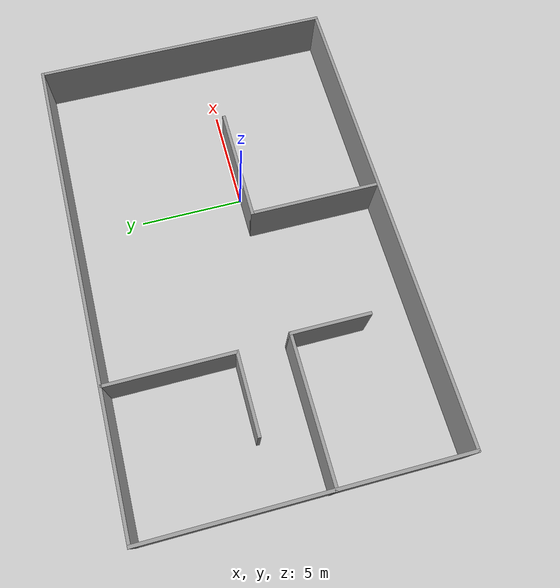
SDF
<?xml version='1.0'?>
<sdf version='1.7'>
  <model name='home'>
    <pose>-3.10908 0.996906 0 0 -0 0</pose>
    <link name='Wall_15'>
      <collision name='Wall_15_Collision'>
        <geometry>
          <box>
            <size>14.5 0.15 2.5</size>
          </box>
        </geometry>
        <pose>0 0 1.25 0 -0 0</pose>
      </collision>
      <visual name='Wall_15_Visual'>
        <pose>0 0 1.25 0 -0 0</pose>
        <geometry>
          <box>
            <size>14.5 0.15 2.5</size>
          </box>
        </geometry>
        <material>
          <script>
            <uri>file://media/materials/scripts/gazebo.material</uri>
            <name>Gazebo/Grey</name>
          </script>
          <ambient>1 1 1 1</ambient>
        </material>
        <meta>
          <layer>0</layer>
        </meta>
      </visual>
      <pose>-11.2924 -9.4e-05 0 0 -0 -1.5708</pose>
    </link>
    <link name='Wall_16'>
      <collision name='Wall_16_Collision'>
        <geometry>
          <box>
            <size>22.75 0.15 2.5</size>
          </box>
        </geometry>
        <pose>0 0 1.25 0 -0 0</pose>
      </collision>
      <visual name='Wall_16_Visual'>
        <pose>0 0 1.25 0 -0 0</pose>
        <geometry>
          <box>
            <size>22.75 0.15 2.5</size>
          </box>
        </geometry>
        <material>
          <script>
            <uri>file://media/materials/scripts/gazebo.material</uri>
            <name>Gazebo/Grey</name>
          </script>
          <ambient>1 1 1 1</ambient>
        </material>
        <meta>
          <layer>0</layer>
        </meta>
      </visual>
      <pose>0.007836 -7.175 0 0 -0 8e-06</pose>
    </link>
    <link name='Wall_17'>
      <collision name='Wall_17_Collision'>
        <geometry>
          <box>
            <size>14.5 0.15 2.5</size>
          </box>
        </geometry>
        <pose>0 0 1.25 0 -0 0</pose>
      </collision>
      <visual name='Wall_17_Visual'>
        <pose>0 0 1.25 0 -0 0</pose>
        <geometry>
          <box>
            <size>14.5 0.15 2.5</size>
          </box>
        </geometry>
        <material>
          <script>
            <uri>file://media/materials/scripts/gazebo.material</uri>
            <name>Gazebo/Grey</name>
          </script>
          <ambient>1 1 1 1</ambient>
        </material>
        <meta>
          <layer>0</layer>
        </meta>
      </visual>
      <pose>11.3081 9.4e-05 0 0 -0 1.5708</pose>
    </link>
    <link name='Wall_19'>
      <collision name='Wall_19_Collision'>
        <geometry>
          <box>
            <size>22.7505 0.15 2.5</size>
          </box>
        </geometry>
        <pose>0 0 1.25 0 -0 0</pose>
      </collision>
      <visual name='Wall_19_Visual'>
        <pose>0 0 1.25 0 -0 0</pose>
        <geometry>
          <box>
            <size>22.7505 0.15 2.5</size>
          </box>
        </geometry>
        <material>
          <script>
            <uri>file://media/materials/scripts/gazebo.material</uri>
            <name>Gazebo/Grey</name>
          </script>
          <ambient>1 1 1 1</ambient>
        </material>
        <meta>
          <layer>0</layer>
        </meta>
      </visual>
      <pose>0.007836 7.175 0 0 -0 8e-06</pose>
    </link>
    <link name='Wall_21'>
      <collision name='Wall_21_Collision'>
        <geometry>
          <box>
            <size>6 0.15 2.5</size>
          </box>
        </geometry>
        <pose>0 0 1.25 0 -0 0</pose>
      </collision>
      <visual name='Wall_21_Visual'>
        <pose>0 0 1.25 0 -0 0</pose>
        <geometry>
          <box>
            <size>6 0.15 2.5</size>
          </box>
        </geometry>
        <material>
          <script>
            <uri>file://media/materials/scripts/gazebo.material</uri>
            <name>Gazebo/Grey</name>
          </script>
          <ambient>1 1 1 1</ambient>
        </material>
        <meta>
          <layer>0</layer>
        </meta>
      </visual>
      <pose>-4.92717 4.17629 0 0 -0 -1.5708</pose>
    </link>
    <link name='Wall_22'>
      <collision name='Wall_22_Collision'>
        <geometry>
          <box>
            <size>3.75 0.15 2.5</size>
          </box>
        </geometry>
        <pose>0 0 1.25 0 -0 0</pose>
      </collision>
      <visual name='Wall_22_Visual'>
        <pose>0 0 1.25 0 -0 0</pose>
        <geometry>
          <box>
            <size>3.75 0.15 2.5</size>
          </box>
        </geometry>
        <material>
          <script>
            <uri>file://media/materials/scripts/gazebo.material</uri>
            <name>Gazebo/Grey</name>
          </script>
          <ambient>1 1 1 1</ambient>
        </material>
        <meta>
          <layer>0</layer>
        </meta>
      </visual>
      <pose>-6.72717 1.25129 0 0 -0 3.14159</pose>
    </link>
    <link name='Wall_26'>
      <collision name='Wall_26_Collision'>
        <geometry>
          <box>
            <size>6.75 0.15 2.5</size>
          </box>
        </geometry>
        <pose>0 0 1.25 0 -0 0</pose>
      </collision>
      <visual name='Wall_26_Visual'>
        <pose>0 0 1.25 0 -0 0</pose>
        <geometry>
          <box>
            <size>6.75 0.15 2.5</size>
          </box>
        </geometry>
        <material>
          <script>
            <uri>file://media/materials/scripts/gazebo.material</uri>
            <name>Gazebo/Grey</name>
          </script>
          <ambient>1 1 1 1</ambient>
        </material>
        <meta>
          <layer>0</layer>
        </meta>
      </visual>
      <pose>-8.00808 -1.18825 0 0 -0 0</pose>
    </link>
    <link name='Wall_27'>
      <collision name='Wall_27_Collision'>
        <geometry>
          <box>
            <size>3.75 0.15 2.5</size>
          </box>
        </geometry>
        <pose>0 0 1.25 0 -0 0</pose>
      </collision>
      <visual name='Wall_27_Visual'>
        <pose>0 0 1.25 0 -0 0</pose>
        <geometry>
          <box>
            <size>3.75 0.15 2.5</size>
          </box>
        </geometry>
        <material>
          <script>
            <uri>file://media/materials/scripts/gazebo.material</uri>
            <name>Gazebo/Grey</name>
          </script>
          <ambient>1 1 1 1</ambient>
        </material>
        <meta>
          <layer>0</layer>
        </meta>
      </visual>
      <pose>-4.70808 -2.98825 0 0 -0 -1.5708</pose>
    </link>
    <link name='Wall_29'>
      <collision name='Wall_29_Collision'>
        <geometry>
          <box>
            <size>6.25 0.15 2.5</size>
          </box>
        </geometry>
        <pose>0 0 1.25 0 -0 0</pose>
      </collision>
      <visual name='Wall_29_Visual'>
        <pose>0 0 1.25 0 -0 0</pose>
        <geometry>
          <box>
            <size>6.25 0.15 2.5</size>
          </box>
        </geometry>
        <material>
          <script>
            <uri>file://media/materials/scripts/gazebo.material</uri>
            <name>Gazebo/Grey</name>
          </script>
          <ambient>1 1 1 1</ambient>
        </material>
        <meta>
          <layer>0</layer>
        </meta>
      </visual>
      <pose>1.23392 -4.10334 0 0 -0 1.5708</pose>
    </link>
    <link name='Wall_30'>
      <collision name='Wall_30_Collision'>
        <geometry>
          <box>
            <size>5.5 0.15 2.5</size>
          </box>
        </geometry>
        <pose>0 0 1.25 0 -0 0</pose>
      </collision>
      <visual name='Wall_30_Visual'>
        <pose>0 0 1.25 0 -0 0</pose>
        <geometry>
          <box>
            <size>5.5 0.15 2.5</size>
          </box>
        </geometry>
        <material>
          <script>
            <uri>file://media/materials/scripts/gazebo.material</uri>
            <name>Gazebo/Grey</name>
          </script>
          <ambient>1 1 1 1</ambient>
        </material>
        <meta>
          <layer>0</layer>
        </meta>
      </visual>
      <pose>3.90892 -1.05334 0 0 -0 0</pose>
    </link>
    <static>1</static>
  </model>
</sdf>
